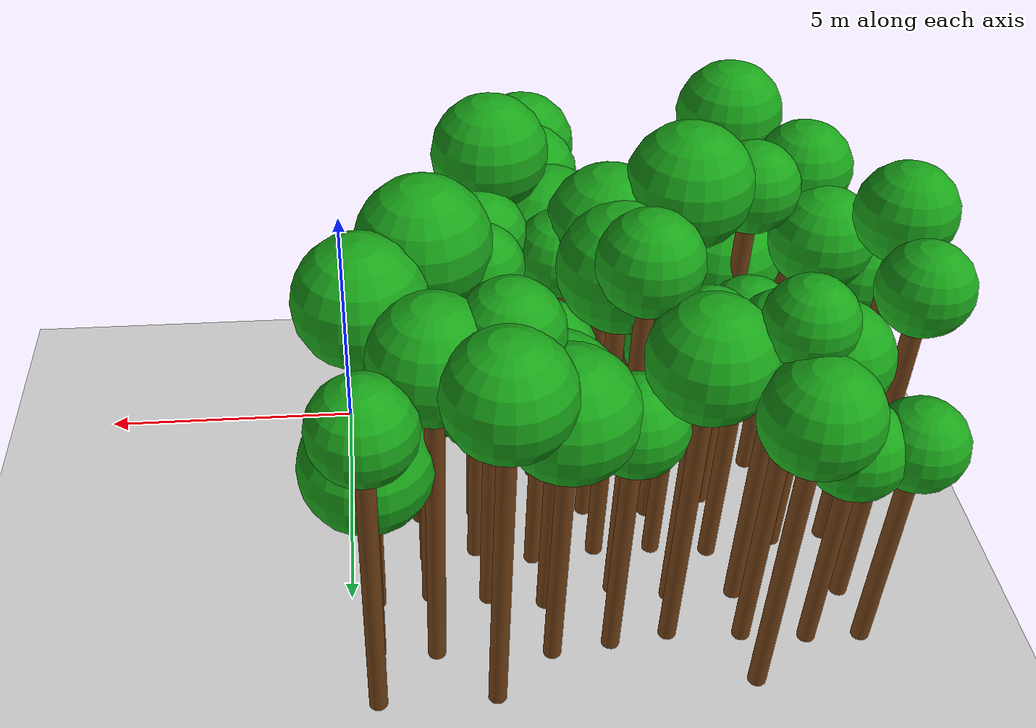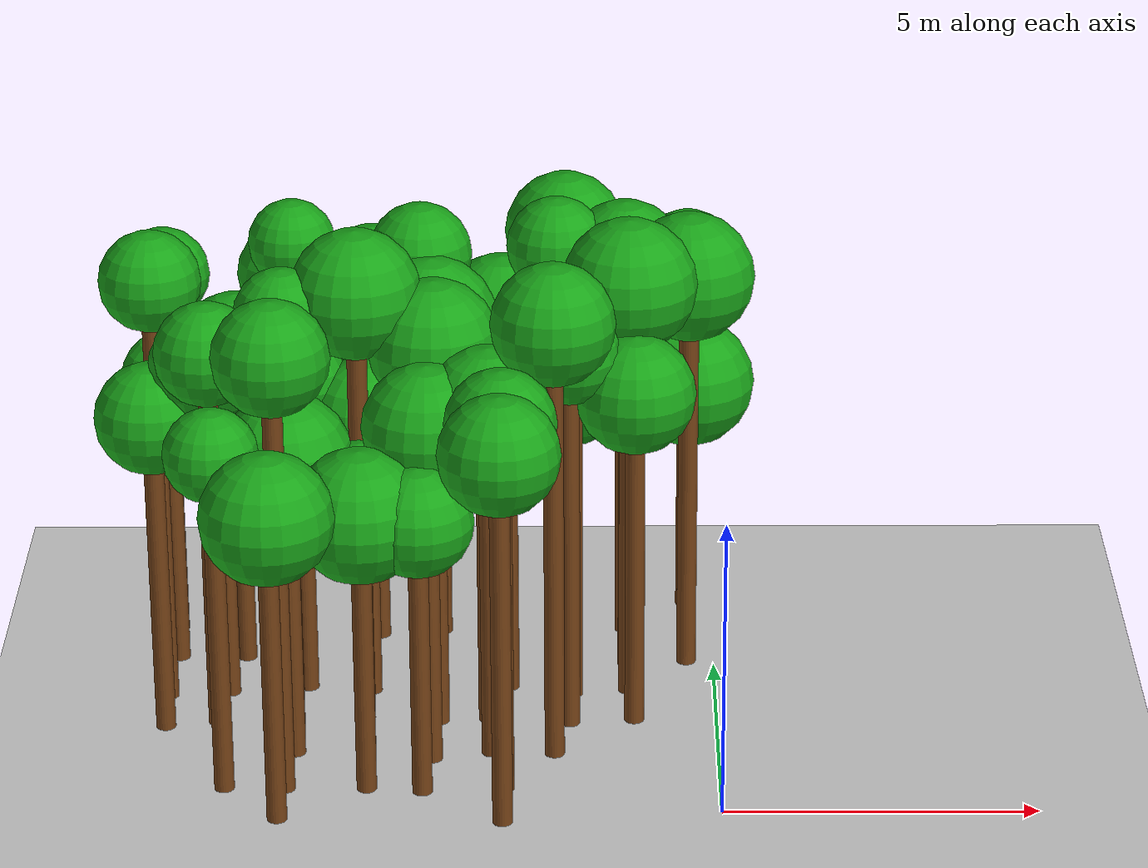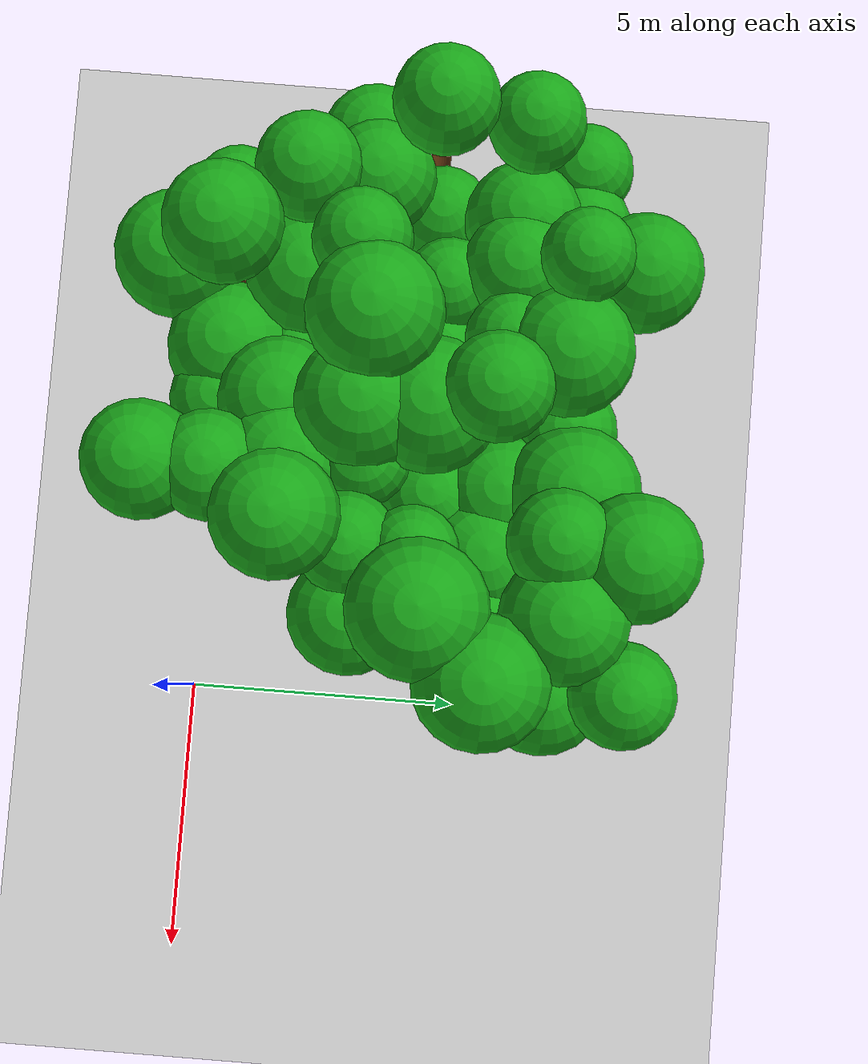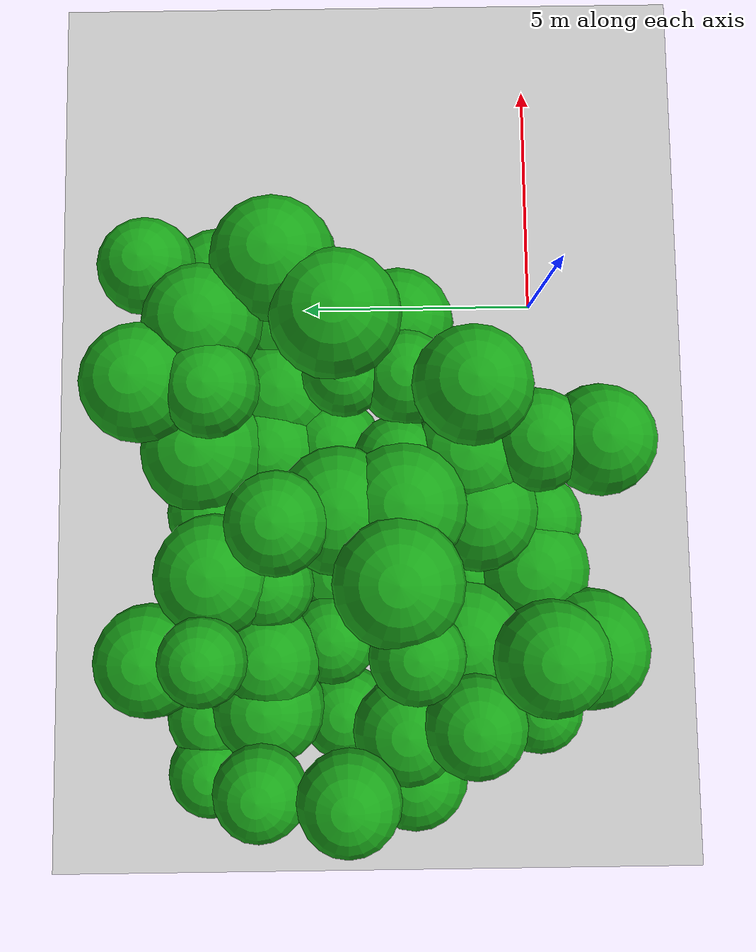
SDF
<sdf version="1.6">
 <world name="forest_world">
  <include><uri>model://sun</uri></include>
  <include><uri>model://ground_plane</uri></include>
  <model name="tree_1075_trunk">
   <static>true</static>
   <pose>-9.03 2.90 2.49 0 0 0</pose>
   <link name="link">
    <collision name="collision">
     <geometry><cylinder><radius>0.16</radius><length>4.99</length></cylinder></geometry>
    </collision>
    <visual name="visual">
     <geometry><cylinder><radius>0.16</radius><length>4.99</length></cylinder></geometry>
     <material><ambient>0.35 0.20 0.05 1</ambient><diffuse>0.45 0.25 0.08 1</diffuse></material>
    </visual>
   </link>
  </model>
  <model name="tree_1075_leaf">
   <static>true</static>
   <pose>-9.03 2.90 5.53 0 0 0</pose>
   <link name="link">
    <collision name="collision"><geometry><sphere><radius>0.91</radius></sphere></geometry></collision>
    <visual name="visual">
     <geometry><sphere><radius>0.91</radius></sphere></geometry>
     <material><ambient>0.05 0.45 0.05 1</ambient><diffuse>0.10 0.65 0.10 1</diffuse></material>
    </visual>
   </link>
  </model>
  <model name="tree_1076_trunk">
   <static>true</static>
   <pose>-9.07 3.97 3.47 0 0 0</pose>
   <link name="link">
    <collision name="collision">
     <geometry><cylinder><radius>0.16</radius><length>6.94</length></cylinder></geometry>
    </collision>
    <visual name="visual">
     <geometry><cylinder><radius>0.16</radius><length>6.94</length></cylinder></geometry>
     <material><ambient>0.35 0.20 0.05 1</ambient><diffuse>0.45 0.25 0.08 1</diffuse></material>
    </visual>
   </link>
  </model>
  <model name="tree_1076_leaf">
   <static>true</static>
   <pose>-9.07 3.97 7.43 0 0 0</pose>
   <link name="link">
    <collision name="collision"><geometry><sphere><radius>0.82</radius></sphere></geometry></collision>
    <visual name="visual">
     <geometry><sphere><radius>0.82</radius></sphere></geometry>
     <material><ambient>0.05 0.45 0.05 1</ambient><diffuse>0.10 0.65 0.10 1</diffuse></material>
    </visual>
   </link>
  </model>
  <model name="tree_1077_trunk">
   <static>true</static>
   <pose>-9.00 5.37 3.26 0 0 0</pose>
   <link name="link">
    <collision name="collision">
     <geometry><cylinder><radius>0.16</radius><length>6.53</length></cylinder></geometry>
    </collision>
    <visual name="visual">
     <geometry><cylinder><radius>0.16</radius><length>6.53</length></cylinder></geometry>
     <material><ambient>0.35 0.20 0.05 1</ambient><diffuse>0.45 0.25 0.08 1</diffuse></material>
    </visual>
   </link>
  </model>
  <model name="tree_1077_leaf">
   <static>true</static>
   <pose>-9.00 5.37 6.99 0 0 0</pose>
   <link name="link">
    <collision name="collision"><geometry><sphere><radius>0.76</radius></sphere></geometry></collision>
    <visual name="visual">
     <geometry><sphere><radius>0.76</radius></sphere></geometry>
     <material><ambient>0.05 0.45 0.05 1</ambient><diffuse>0.10 0.65 0.10 1</diffuse></material>
    </visual>
   </link>
  </model>
  <model name="tree_1078_trunk">
   <static>true</static>
   <pose>-9.10 6.41 2.12 0 0 0</pose>
   <link name="link">
    <collision name="collision">
     <geometry><cylinder><radius>0.16</radius><length>4.24</length></cylinder></geometry>
    </collision>
    <visual name="visual">
     <geometry><cylinder><radius>0.16</radius><length>4.24</length></cylinder></geometry>
     <material><ambient>0.35 0.20 0.05 1</ambient><diffuse>0.45 0.25 0.08 1</diffuse></material>
    </visual>
   </link>
  </model>
  <model name="tree_1078_leaf">
   <static>true</static>
   <pose>-9.10 6.41 4.71 0 0 0</pose>
   <link name="link">
    <collision name="collision"><geometry><sphere><radius>0.78</radius></sphere></geometry></collision>
    <visual name="visual">
     <geometry><sphere><radius>0.78</radius></sphere></geometry>
     <material><ambient>0.05 0.45 0.05 1</ambient><diffuse>0.10 0.65 0.10 1</diffuse></material>
    </visual>
   </link>
  </model>
  <model name="tree_1128_trunk">
   <static>true</static>
   <pose>-7.92 0.82 2.69 0 0 0</pose>
   <link name="link">
    <collision name="collision">
     <geometry><cylinder><radius>0.16</radius><length>5.38</length></cylinder></geometry>
    </collision>
    <visual name="visual">
     <geometry><cylinder><radius>0.16</radius><length>5.38</length></cylinder></geometry>
     <material><ambient>0.35 0.20 0.05 1</ambient><diffuse>0.45 0.25 0.08 1</diffuse></material>
    </visual>
   </link>
  </model>
  <model name="tree_1128_leaf">
   <static>true</static>
   <pose>-7.92 0.82 5.83 0 0 0</pose>
   <link name="link">
    <collision name="collision"><geometry><sphere><radius>0.75</radius></sphere></geometry></collision>
    <visual name="visual">
     <geometry><sphere><radius>0.75</radius></sphere></geometry>
     <material><ambient>0.05 0.45 0.05 1</ambient><diffuse>0.10 0.65 0.10 1</diffuse></material>
    </visual>
   </link>
  </model>
  <model name="tree_1129_trunk">
   <static>true</static>
   <pose>-8.03 1.97 3.27 0 0 0</pose>
   <link name="link">
    <collision name="collision">
     <geometry><cylinder><radius>0.16</radius><length>6.53</length></cylinder></geometry>
    </collision>
    <visual name="visual">
     <geometry><cylinder><radius>0.16</radius><length>6.53</length></cylinder></geometry>
     <material><ambient>0.35 0.20 0.05 1</ambient><diffuse>0.45 0.25 0.08 1</diffuse></material>
    </visual>
   </link>
  </model>
  <model name="tree_1129_leaf">
   <static>true</static>
   <pose>-8.03 1.97 7.03 0 0 0</pose>
   <link name="link">
    <collision name="collision"><geometry><sphere><radius>0.83</radius></sphere></geometry></collision>
    <visual name="visual">
     <geometry><sphere><radius>0.83</radius></sphere></geometry>
     <material><ambient>0.05 0.45 0.05 1</ambient><diffuse>0.10 0.65 0.10 1</diffuse></material>
    </visual>
   </link>
  </model>
  <model name="tree_1130_trunk">
   <static>true</static>
   <pose>-8.18 3.03 2.90 0 0 0</pose>
   <link name="link">
    <collision name="collision">
     <geometry><cylinder><radius>0.16</radius><length>5.79</length></cylinder></geometry>
    </collision>
    <visual name="visual">
     <geometry><cylinder><radius>0.16</radius><length>5.79</length></cylinder></geometry>
     <material><ambient>0.35 0.20 0.05 1</ambient><diffuse>0.45 0.25 0.08 1</diffuse></material>
    </visual>
   </link>
  </model>
  <model name="tree_1130_leaf">
   <static>true</static>
   <pose>-8.18 3.03 6.33 0 0 0</pose>
   <link name="link">
    <collision name="collision"><geometry><sphere><radius>0.89</radius></sphere></geometry></collision>
    <visual name="visual">
     <geometry><sphere><radius>0.89</radius></sphere></geometry>
     <material><ambient>0.05 0.45 0.05 1</ambient><diffuse>0.10 0.65 0.10 1</diffuse></material>
    </visual>
   </link>
  </model>
  <model name="tree_1131_trunk">
   <static>true</static>
   <pose>-8.05 4.07 2.28 0 0 0</pose>
   <link name="link">
    <collision name="collision">
     <geometry><cylinder><radius>0.16</radius><length>4.55</length></cylinder></geometry>
    </collision>
    <visual name="visual">
     <geometry><cylinder><radius>0.16</radius><length>4.55</length></cylinder></geometry>
     <material><ambient>0.35 0.20 0.05 1</ambient><diffuse>0.45 0.25 0.08 1</diffuse></material>
    </visual>
   </link>
  </model>
  <model name="tree_1131_leaf">
   <static>true</static>
   <pose>-8.05 4.07 5.04 0 0 0</pose>
   <link name="link">
    <collision name="collision"><geometry><sphere><radius>0.81</radius></sphere></geometry></collision>
    <visual name="visual">
     <geometry><sphere><radius>0.81</radius></sphere></geometry>
     <material><ambient>0.05 0.45 0.05 1</ambient><diffuse>0.10 0.65 0.10 1</diffuse></material>
    </visual>
   </link>
  </model>
  <model name="tree_1132_trunk">
   <static>true</static>
   <pose>-7.87 5.35 2.55 0 0 0</pose>
   <link name="link">
    <collision name="collision">
     <geometry><cylinder><radius>0.16</radius><length>5.10</length></cylinder></geometry>
    </collision>
    <visual name="visual">
     <geometry><cylinder><radius>0.16</radius><length>5.10</length></cylinder></geometry>
     <material><ambient>0.35 0.20 0.05 1</ambient><diffuse>0.45 0.25 0.08 1</diffuse></material>
    </visual>
   </link>
  </model>
  <model name="tree_1132_leaf">
   <static>true</static>
   <pose>-7.87 5.35 5.67 0 0 0</pose>
   <link name="link">
    <collision name="collision"><geometry><sphere><radius>0.95</radius></sphere></geometry></collision>
    <visual name="visual">
     <geometry><sphere><radius>0.95</radius></sphere></geometry>
     <material><ambient>0.05 0.45 0.05 1</ambient><diffuse>0.10 0.65 0.10 1</diffuse></material>
    </visual>
   </link>
  </model>
  <model name="tree_1133_trunk">
   <static>true</static>
   <pose>-8.12 6.39 2.07 0 0 0</pose>
   <link name="link">
    <collision name="collision">
     <geometry><cylinder><radius>0.16</radius><length>4.14</length></cylinder></geometry>
    </collision>
    <visual name="visual">
     <geometry><cylinder><radius>0.16</radius><length>4.14</length></cylinder></geometry>
     <material><ambient>0.35 0.20 0.05 1</ambient><diffuse>0.45 0.25 0.08 1</diffuse></material>
    </visual>
   </link>
  </model>
  <model name="tree_1133_leaf">
   <static>true</static>
   <pose>-8.12 6.39 4.65 0 0 0</pose>
   <link name="link">
    <collision name="collision"><geometry><sphere><radius>0.84</radius></sphere></geometry></collision>
    <visual name="visual">
     <geometry><sphere><radius>0.84</radius></sphere></geometry>
     <material><ambient>0.05 0.45 0.05 1</ambient><diffuse>0.10 0.65 0.10 1</diffuse></material>
    </visual>
   </link>
  </model>
  <model name="tree_1182_trunk">
   <static>true</static>
   <pose>-7.02 -0.18 2.30 0 0 0</pose>
   <link name="link">
    <collision name="collision">
     <geometry><cylinder><radius>0.16</radius><length>4.60</length></cylinder></geometry>
    </collision>
    <visual name="visual">
     <geometry><cylinder><radius>0.16</radius><length>4.60</length></cylinder></geometry>
     <material><ambient>0.35 0.20 0.05 1</ambient><diffuse>0.45 0.25 0.08 1</diffuse></material>
    </visual>
   </link>
  </model>
  <model name="tree_1182_leaf">
   <static>true</static>
   <pose>-7.02 -0.18 5.23 0 0 0</pose>
   <link name="link">
    <collision name="collision"><geometry><sphere><radius>1.05</radius></sphere></geometry></collision>
    <visual name="visual">
     <geometry><sphere><radius>1.05</radius></sphere></geometry>
     <material><ambient>0.05 0.45 0.05 1</ambient><diffuse>0.10 0.65 0.10 1</diffuse></material>
    </visual>
   </link>
  </model>
  <model name="tree_1183_trunk">
   <static>true</static>
   <pose>-6.95 0.80 3.45 0 0 0</pose>
   <link name="link">
    <collision name="collision">
     <geometry><cylinder><radius>0.16</radius><length>6.91</length></cylinder></geometry>
    </collision>
    <visual name="visual">
     <geometry><cylinder><radius>0.16</radius><length>6.91</length></cylinder></geometry>
     <material><ambient>0.35 0.20 0.05 1</ambient><diffuse>0.45 0.25 0.08 1</diffuse></material>
    </visual>
   </link>
  </model>
  <model name="tree_1183_leaf">
   <static>true</static>
   <pose>-6.95 0.80 7.46 0 0 0</pose>
   <link name="link">
    <collision name="collision"><geometry><sphere><radius>0.92</radius></sphere></geometry></collision>
    <visual name="visual">
     <geometry><sphere><radius>0.92</radius></sphere></geometry>
     <material><ambient>0.05 0.45 0.05 1</ambient><diffuse>0.10 0.65 0.10 1</diffuse></material>
    </visual>
   </link>
  </model>
  <model name="tree_1184_trunk">
   <static>true</static>
   <pose>-6.85 1.99 2.30 0 0 0</pose>
   <link name="link">
    <collision name="collision">
     <geometry><cylinder><radius>0.16</radius><length>4.61</length></cylinder></geometry>
    </collision>
    <visual name="visual">
     <geometry><cylinder><radius>0.16</radius><length>4.61</length></cylinder></geometry>
     <material><ambient>0.35 0.20 0.05 1</ambient><diffuse>0.45 0.25 0.08 1</diffuse></material>
    </visual>
   </link>
  </model>
  <model name="tree_1184_leaf">
   <static>true</static>
   <pose>-6.85 1.99 5.24 0 0 0</pose>
   <link name="link">
    <collision name="collision"><geometry><sphere><radius>1.06</radius></sphere></geometry></collision>
    <visual name="visual">
     <geometry><sphere><radius>1.06</radius></sphere></geometry>
     <material><ambient>0.05 0.45 0.05 1</ambient><diffuse>0.10 0.65 0.10 1</diffuse></material>
    </visual>
   </link>
  </model>
  <model name="tree_1185_trunk">
   <static>true</static>
   <pose>-6.91 2.88 3.42 0 0 0</pose>
   <link name="link">
    <collision name="collision">
     <geometry><cylinder><radius>0.16</radius><length>6.83</length></cylinder></geometry>
    </collision>
    <visual name="visual">
     <geometry><cylinder><radius>0.16</radius><length>6.83</length></cylinder></geometry>
     <material><ambient>0.35 0.20 0.05 1</ambient><diffuse>0.45 0.25 0.08 1</diffuse></material>
    </visual>
   </link>
  </model>
  <model name="tree_1185_leaf">
   <static>true</static>
   <pose>-6.91 2.88 7.29 0 0 0</pose>
   <link name="link">
    <collision name="collision"><geometry><sphere><radius>0.77</radius></sphere></geometry></collision>
    <visual name="visual">
     <geometry><sphere><radius>0.77</radius></sphere></geometry>
     <material><ambient>0.05 0.45 0.05 1</ambient><diffuse>0.10 0.65 0.10 1</diffuse></material>
    </visual>
   </link>
  </model>
  <model name="tree_1186_trunk">
   <static>true</static>
   <pose>-6.76 4.26 2.57 0 0 0</pose>
   <link name="link">
    <collision name="collision">
     <geometry><cylinder><radius>0.16</radius><length>5.14</length></cylinder></geometry>
    </collision>
    <visual name="visual">
     <geometry><cylinder><radius>0.16</radius><length>5.14</length></cylinder></geometry>
     <material><ambient>0.35 0.20 0.05 1</ambient><diffuse>0.45 0.25 0.08 1</diffuse></material>
    </visual>
   </link>
  </model>
  <model name="tree_1186_leaf">
   <static>true</static>
   <pose>-6.76 4.26 5.60 0 0 0</pose>
   <link name="link">
    <collision name="collision"><geometry><sphere><radius>0.76</radius></sphere></geometry></collision>
    <visual name="visual">
     <geometry><sphere><radius>0.76</radius></sphere></geometry>
     <material><ambient>0.05 0.45 0.05 1</ambient><diffuse>0.10 0.65 0.10 1</diffuse></material>
    </visual>
   </link>
  </model>
  <model name="tree_1187_trunk">
   <static>true</static>
   <pose>-7.03 5.31 2.71 0 0 0</pose>
   <link name="link">
    <collision name="collision">
     <geometry><cylinder><radius>0.16</radius><length>5.43</length></cylinder></geometry>
    </collision>
    <visual name="visual">
     <geometry><cylinder><radius>0.16</radius><length>5.43</length></cylinder></geometry>
     <material><ambient>0.35 0.20 0.05 1</ambient><diffuse>0.45 0.25 0.08 1</diffuse></material>
    </visual>
   </link>
  </model>
  <model name="tree_1187_leaf">
   <static>true</static>
   <pose>-7.03 5.31 5.96 0 0 0</pose>
   <link name="link">
    <collision name="collision"><geometry><sphere><radius>0.89</radius></sphere></geometry></collision>
    <visual name="visual">
     <geometry><sphere><radius>0.89</radius></sphere></geometry>
     <material><ambient>0.05 0.45 0.05 1</ambient><diffuse>0.10 0.65 0.10 1</diffuse></material>
    </visual>
   </link>
  </model>
  <model name="tree_1188_trunk">
   <static>true</static>
   <pose>-6.96 6.27 3.37 0 0 0</pose>
   <link name="link">
    <collision name="collision">
     <geometry><cylinder><radius>0.16</radius><length>6.74</length></cylinder></geometry>
    </collision>
    <visual name="visual">
     <geometry><cylinder><radius>0.16</radius><length>6.74</length></cylinder></geometry>
     <material><ambient>0.35 0.20 0.05 1</ambient><diffuse>0.45 0.25 0.08 1</diffuse></material>
    </visual>
   </link>
  </model>
  <model name="tree_1188_leaf">
   <static>true</static>
   <pose>-6.96 6.27 7.17 0 0 0</pose>
   <link name="link">
    <collision name="collision"><geometry><sphere><radius>0.72</radius></sphere></geometry></collision>
    <visual name="visual">
     <geometry><sphere><radius>0.72</radius></sphere></geometry>
     <material><ambient>0.05 0.45 0.05 1</ambient><diffuse>0.10 0.65 0.10 1</diffuse></material>
    </visual>
   </link>
  </model>
  <model name="tree_1189_trunk">
   <static>true</static>
   <pose>-7.02 7.26 2.82 0 0 0</pose>
   <link name="link">
    <collision name="collision">
     <geometry><cylinder><radius>0.16</radius><length>5.65</length></cylinder></geometry>
    </collision>
    <visual name="visual">
     <geometry><cylinder><radius>0.16</radius><length>5.65</length></cylinder></geometry>
     <material><ambient>0.35 0.20 0.05 1</ambient><diffuse>0.45 0.25 0.08 1</diffuse></material>
    </visual>
   </link>
  </model>
  <model name="tree_1189_leaf">
   <static>true</static>
   <pose>-7.02 7.26 6.21 0 0 0</pose>
   <link name="link">
    <collision name="collision"><geometry><sphere><radius>0.94</radius></sphere></geometry></collision>
    <visual name="visual">
     <geometry><sphere><radius>0.94</radius></sphere></geometry>
     <material><ambient>0.05 0.45 0.05 1</ambient><diffuse>0.10 0.65 0.10 1</diffuse></material>
    </visual>
   </link>
  </model>
  <model name="tree_1238_trunk">
   <static>true</static>
   <pose>-5.65 0.78 2.09 0 0 0</pose>
   <link name="link">
    <collision name="collision">
     <geometry><cylinder><radius>0.16</radius><length>4.17</length></cylinder></geometry>
    </collision>
    <visual name="visual">
     <geometry><cylinder><radius>0.16</radius><length>4.17</length></cylinder></geometry>
     <material><ambient>0.35 0.20 0.05 1</ambient><diffuse>0.45 0.25 0.08 1</diffuse></material>
    </visual>
   </link>
  </model>
  <model name="tree_1238_leaf">
   <static>true</static>
   <pose>-5.65 0.78 4.82 0 0 0</pose>
   <link name="link">
    <collision name="collision"><geometry><sphere><radius>1.08</radius></sphere></geometry></collision>
    <visual name="visual">
     <geometry><sphere><radius>1.08</radius></sphere></geometry>
     <material><ambient>0.05 0.45 0.05 1</ambient><diffuse>0.10 0.65 0.10 1</diffuse></material>
    </visual>
   </link>
  </model>
  <model name="tree_1239_trunk">
   <static>true</static>
   <pose>-5.71 1.92 2.10 0 0 0</pose>
   <link name="link">
    <collision name="collision">
     <geometry><cylinder><radius>0.16</radius><length>4.20</length></cylinder></geometry>
    </collision>
    <visual name="visual">
     <geometry><cylinder><radius>0.16</radius><length>4.20</length></cylinder></geometry>
     <material><ambient>0.35 0.20 0.05 1</ambient><diffuse>0.45 0.25 0.08 1</diffuse></material>
    </visual>
   </link>
  </model>
  <model name="tree_1239_leaf">
   <static>true</static>
   <pose>-5.71 1.92 4.69 0 0 0</pose>
   <link name="link">
    <collision name="collision"><geometry><sphere><radius>0.82</radius></sphere></geometry></collision>
    <visual name="visual">
     <geometry><sphere><radius>0.82</radius></sphere></geometry>
     <material><ambient>0.05 0.45 0.05 1</ambient><diffuse>0.10 0.65 0.10 1</diffuse></material>
    </visual>
   </link>
  </model>
  <model name="tree_1240_trunk">
   <static>true</static>
   <pose>-5.77 3.16 3.45 0 0 0</pose>
   <link name="link">
    <collision name="collision">
     <geometry><cylinder><radius>0.16</radius><length>6.91</length></cylinder></geometry>
    </collision>
    <visual name="visual">
     <geometry><cylinder><radius>0.16</radius><length>6.91</length></cylinder></geometry>
     <material><ambient>0.35 0.20 0.05 1</ambient><diffuse>0.45 0.25 0.08 1</diffuse></material>
    </visual>
   </link>
  </model>
  <model name="tree_1240_leaf">
   <static>true</static>
   <pose>-5.77 3.16 7.54 0 0 0</pose>
   <link name="link">
    <collision name="collision"><geometry><sphere><radius>1.05</radius></sphere></geometry></collision>
    <visual name="visual">
     <geometry><sphere><radius>1.05</radius></sphere></geometry>
     <material><ambient>0.05 0.45 0.05 1</ambient><diffuse>0.10 0.65 0.10 1</diffuse></material>
    </visual>
   </link>
  </model>
  <model name="tree_1241_trunk">
   <static>true</static>
   <pose>-5.70 4.12 2.25 0 0 0</pose>
   <link name="link">
    <collision name="collision">
     <geometry><cylinder><radius>0.16</radius><length>4.49</length></cylinder></geometry>
    </collision>
    <visual name="visual">
     <geometry><cylinder><radius>0.16</radius><length>4.49</length></cylinder></geometry>
     <material><ambient>0.35 0.20 0.05 1</ambient><diffuse>0.45 0.25 0.08 1</diffuse></material>
    </visual>
   </link>
  </model>
  <model name="tree_1241_leaf">
   <static>true</static>
   <pose>-5.70 4.12 5.06 0 0 0</pose>
   <link name="link">
    <collision name="collision"><geometry><sphere><radius>0.94</radius></sphere></geometry></collision>
    <visual name="visual">
     <geometry><sphere><radius>0.94</radius></sphere></geometry>
     <material><ambient>0.05 0.45 0.05 1</ambient><diffuse>0.10 0.65 0.10 1</diffuse></material>
    </visual>
   </link>
  </model>
  <model name="tree_1242_trunk">
   <static>true</static>
   <pose>-5.82 5.29 2.89 0 0 0</pose>
   <link name="link">
    <collision name="collision">
     <geometry><cylinder><radius>0.16</radius><length>5.78</length></cylinder></geometry>
    </collision>
    <visual name="visual">
     <geometry><cylinder><radius>0.16</radius><length>5.78</length></cylinder></geometry>
     <material><ambient>0.35 0.20 0.05 1</ambient><diffuse>0.45 0.25 0.08 1</diffuse></material>
    </visual>
   </link>
  </model>
  <model name="tree_1242_leaf">
   <static>true</static>
   <pose>-5.82 5.29 6.23 0 0 0</pose>
   <link name="link">
    <collision name="collision"><geometry><sphere><radius>0.75</radius></sphere></geometry></collision>
    <visual name="visual">
     <geometry><sphere><radius>0.75</radius></sphere></geometry>
     <material><ambient>0.05 0.45 0.05 1</ambient><diffuse>0.10 0.65 0.10 1</diffuse></material>
    </visual>
   </link>
  </model>
  <model name="tree_1243_trunk">
   <static>true</static>
   <pose>-5.64 6.17 2.92 0 0 0</pose>
   <link name="link">
    <collision name="collision">
     <geometry><cylinder><radius>0.16</radius><length>5.84</length></cylinder></geometry>
    </collision>
    <visual name="visual">
     <geometry><cylinder><radius>0.16</radius><length>5.84</length></cylinder></geometry>
     <material><ambient>0.35 0.20 0.05 1</ambient><diffuse>0.45 0.25 0.08 1</diffuse></material>
    </visual>
   </link>
  </model>
  <model name="tree_1243_leaf">
   <static>true</static>
   <pose>-5.64 6.17 6.45 0 0 0</pose>
   <link name="link">
    <collision name="collision"><geometry><sphere><radius>1.02</radius></sphere></geometry></collision>
    <visual name="visual">
     <geometry><sphere><radius>1.02</radius></sphere></geometry>
     <material><ambient>0.05 0.45 0.05 1</ambient><diffuse>0.10 0.65 0.10 1</diffuse></material>
    </visual>
   </link>
  </model>
  <model name="tree_1293_trunk">
   <static>true</static>
   <pose>-4.76 0.69 2.11 0 0 0</pose>
   <link name="link">
    <collision name="collision">
     <geometry><cylinder><radius>0.16</radius><length>4.22</length></cylinder></geometry>
    </collision>
    <visual name="visual">
     <geometry><cylinder><radius>0.16</radius><length>4.22</length></cylinder></geometry>
     <material><ambient>0.35 0.20 0.05 1</ambient><diffuse>0.45 0.25 0.08 1</diffuse></material>
    </visual>
   </link>
  </model>
  <model name="tree_1293_leaf">
   <static>true</static>
   <pose>-4.76 0.69 4.76 0 0 0</pose>
   <link name="link">
    <collision name="collision"><geometry><sphere><radius>0.89</radius></sphere></geometry></collision>
    <visual name="visual">
     <geometry><sphere><radius>0.89</radius></sphere></geometry>
     <material><ambient>0.05 0.45 0.05 1</ambient><diffuse>0.10 0.65 0.10 1</diffuse></material>
    </visual>
   </link>
  </model>
  <model name="tree_1294_trunk">
   <static>true</static>
   <pose>-4.63 1.76 2.63 0 0 0</pose>
   <link name="link">
    <collision name="collision">
     <geometry><cylinder><radius>0.16</radius><length>5.25</length></cylinder></geometry>
    </collision>
    <visual name="visual">
     <geometry><cylinder><radius>0.16</radius><length>5.25</length></cylinder></geometry>
     <material><ambient>0.35 0.20 0.05 1</ambient><diffuse>0.45 0.25 0.08 1</diffuse></material>
    </visual>
   </link>
  </model>
  <model name="tree_1294_leaf">
   <static>true</static>
   <pose>-4.63 1.76 5.87 0 0 0</pose>
   <link name="link">
    <collision name="collision"><geometry><sphere><radius>1.03</radius></sphere></geometry></collision>
    <visual name="visual">
     <geometry><sphere><radius>1.03</radius></sphere></geometry>
     <material><ambient>0.05 0.45 0.05 1</ambient><diffuse>0.10 0.65 0.10 1</diffuse></material>
    </visual>
   </link>
  </model>
  <model name="tree_1295_trunk">
   <static>true</static>
   <pose>-4.55 3.05 3.05 0 0 0</pose>
   <link name="link">
    <collision name="collision">
     <geometry><cylinder><radius>0.16</radius><length>6.09</length></cylinder></geometry>
    </collision>
    <visual name="visual">
     <geometry><cylinder><radius>0.16</radius><length>6.09</length></cylinder></geometry>
     <material><ambient>0.35 0.20 0.05 1</ambient><diffuse>0.45 0.25 0.08 1</diffuse></material>
    </visual>
   </link>
  </model>
  <model name="tree_1295_leaf">
   <static>true</static>
   <pose>-4.55 3.05 6.73 0 0 0</pose>
   <link name="link">
    <collision name="collision"><geometry><sphere><radius>1.06</radius></sphere></geometry></collision>
    <visual name="visual">
     <geometry><sphere><radius>1.06</radius></sphere></geometry>
     <material><ambient>0.05 0.45 0.05 1</ambient><diffuse>0.10 0.65 0.10 1</diffuse></material>
    </visual>
   </link>
  </model>
  <model name="tree_1296_trunk">
   <static>true</static>
   <pose>-4.61 4.10 3.02 0 0 0</pose>
   <link name="link">
    <collision name="collision">
     <geometry><cylinder><radius>0.16</radius><length>6.03</length></cylinder></geometry>
    </collision>
    <visual name="visual">
     <geometry><cylinder><radius>0.16</radius><length>6.03</length></cylinder></geometry>
     <material><ambient>0.35 0.20 0.05 1</ambient><diffuse>0.45 0.25 0.08 1</diffuse></material>
    </visual>
   </link>
  </model>
  <model name="tree_1296_leaf">
   <static>true</static>
   <pose>-4.61 4.10 6.67 0 0 0</pose>
   <link name="link">
    <collision name="collision"><geometry><sphere><radius>1.07</radius></sphere></geometry></collision>
    <visual name="visual">
     <geometry><sphere><radius>1.07</radius></sphere></geometry>
     <material><ambient>0.05 0.45 0.05 1</ambient><diffuse>0.10 0.65 0.10 1</diffuse></material>
    </visual>
   </link>
  </model>
  <model name="tree_1297_trunk">
   <static>true</static>
   <pose>-4.81 5.07 3.47 0 0 0</pose>
   <link name="link">
    <collision name="collision">
     <geometry><cylinder><radius>0.16</radius><length>6.94</length></cylinder></geometry>
    </collision>
    <visual name="visual">
     <geometry><cylinder><radius>0.16</radius><length>6.94</length></cylinder></geometry>
     <material><ambient>0.35 0.20 0.05 1</ambient><diffuse>0.45 0.25 0.08 1</diffuse></material>
    </visual>
   </link>
  </model>
  <model name="tree_1297_leaf">
   <static>true</static>
   <pose>-4.81 5.07 7.45 0 0 0</pose>
   <link name="link">
    <collision name="collision"><geometry><sphere><radius>0.84</radius></sphere></geometry></collision>
    <visual name="visual">
     <geometry><sphere><radius>0.84</radius></sphere></geometry>
     <material><ambient>0.05 0.45 0.05 1</ambient><diffuse>0.10 0.65 0.10 1</diffuse></material>
    </visual>
   </link>
  </model>
  <model name="tree_1298_trunk">
   <static>true</static>
   <pose>-4.59 6.31 2.40 0 0 0</pose>
   <link name="link">
    <collision name="collision">
     <geometry><cylinder><radius>0.16</radius><length>4.80</length></cylinder></geometry>
    </collision>
    <visual name="visual">
     <geometry><cylinder><radius>0.16</radius><length>4.80</length></cylinder></geometry>
     <material><ambient>0.35 0.20 0.05 1</ambient><diffuse>0.45 0.25 0.08 1</diffuse></material>
    </visual>
   </link>
  </model>
  <model name="tree_1298_leaf">
   <static>true</static>
   <pose>-4.59 6.31 5.30 0 0 0</pose>
   <link name="link">
    <collision name="collision"><geometry><sphere><radius>0.84</radius></sphere></geometry></collision>
    <visual name="visual">
     <geometry><sphere><radius>0.84</radius></sphere></geometry>
     <material><ambient>0.05 0.45 0.05 1</ambient><diffuse>0.10 0.65 0.10 1</diffuse></material>
    </visual>
   </link>
  </model>
  <model name="tree_1347_trunk">
   <static>true</static>
   <pose>-3.47 -0.29 2.88 0 0 0</pose>
   <link name="link">
    <collision name="collision">
     <geometry><cylinder><radius>0.16</radius><length>5.76</length></cylinder></geometry>
    </collision>
    <visual name="visual">
     <geometry><cylinder><radius>0.16</radius><length>5.76</length></cylinder></geometry>
     <material><ambient>0.35 0.20 0.05 1</ambient><diffuse>0.45 0.25 0.08 1</diffuse></material>
    </visual>
   </link>
  </model>
  <model name="tree_1347_leaf">
   <static>true</static>
   <pose>-3.47 -0.29 6.33 0 0 0</pose>
   <link name="link">
    <collision name="collision"><geometry><sphere><radius>0.95</radius></sphere></geometry></collision>
    <visual name="visual">
     <geometry><sphere><radius>0.95</radius></sphere></geometry>
     <material><ambient>0.05 0.45 0.05 1</ambient><diffuse>0.10 0.65 0.10 1</diffuse></material>
    </visual>
   </link>
  </model>
  <model name="tree_1348_trunk">
   <static>true</static>
   <pose>-3.46 0.78 2.92 0 0 0</pose>
   <link name="link">
    <collision name="collision">
     <geometry><cylinder><radius>0.16</radius><length>5.84</length></cylinder></geometry>
    </collision>
    <visual name="visual">
     <geometry><cylinder><radius>0.16</radius><length>5.84</length></cylinder></geometry>
     <material><ambient>0.35 0.20 0.05 1</ambient><diffuse>0.45 0.25 0.08 1</diffuse></material>
    </visual>
   </link>
  </model>
  <model name="tree_1348_leaf">
   <static>true</static>
   <pose>-3.46 0.78 6.36 0 0 0</pose>
   <link name="link">
    <collision name="collision"><geometry><sphere><radius>0.88</radius></sphere></geometry></collision>
    <visual name="visual">
     <geometry><sphere><radius>0.88</radius></sphere></geometry>
     <material><ambient>0.05 0.45 0.05 1</ambient><diffuse>0.10 0.65 0.10 1</diffuse></material>
    </visual>
   </link>
  </model>
  <model name="tree_1349_trunk">
   <static>true</static>
   <pose>-3.68 1.96 2.72 0 0 0</pose>
   <link name="link">
    <collision name="collision">
     <geometry><cylinder><radius>0.16</radius><length>5.43</length></cylinder></geometry>
    </collision>
    <visual name="visual">
     <geometry><cylinder><radius>0.16</radius><length>5.43</length></cylinder></geometry>
     <material><ambient>0.35 0.20 0.05 1</ambient><diffuse>0.45 0.25 0.08 1</diffuse></material>
    </visual>
   </link>
  </model>
  <model name="tree_1349_leaf">
   <static>true</static>
   <pose>-3.68 1.96 6.06 0 0 0</pose>
   <link name="link">
    <collision name="collision"><geometry><sphere><radius>1.05</radius></sphere></geometry></collision>
    <visual name="visual">
     <geometry><sphere><radius>1.05</radius></sphere></geometry>
     <material><ambient>0.05 0.45 0.05 1</ambient><diffuse>0.10 0.65 0.10 1</diffuse></material>
    </visual>
   </link>
  </model>
  <model name="tree_1350_trunk">
   <static>true</static>
   <pose>-3.75 3.11 2.92 0 0 0</pose>
   <link name="link">
    <collision name="collision">
     <geometry><cylinder><radius>0.16</radius><length>5.83</length></cylinder></geometry>
    </collision>
    <visual name="visual">
     <geometry><cylinder><radius>0.16</radius><length>5.83</length></cylinder></geometry>
     <material><ambient>0.35 0.20 0.05 1</ambient><diffuse>0.45 0.25 0.08 1</diffuse></material>
    </visual>
   </link>
  </model>
  <model name="tree_1350_leaf">
   <static>true</static>
   <pose>-3.75 3.11 6.28 0 0 0</pose>
   <link name="link">
    <collision name="collision"><geometry><sphere><radius>0.75</radius></sphere></geometry></collision>
    <visual name="visual">
     <geometry><sphere><radius>0.75</radius></sphere></geometry>
     <material><ambient>0.05 0.45 0.05 1</ambient><diffuse>0.10 0.65 0.10 1</diffuse></material>
    </visual>
   </link>
  </model>
  <model name="tree_1351_trunk">
   <static>true</static>
   <pose>-3.42 4.24 2.31 0 0 0</pose>
   <link name="link">
    <collision name="collision">
     <geometry><cylinder><radius>0.16</radius><length>4.61</length></cylinder></geometry>
    </collision>
    <visual name="visual">
     <geometry><cylinder><radius>0.16</radius><length>4.61</length></cylinder></geometry>
     <material><ambient>0.35 0.20 0.05 1</ambient><diffuse>0.45 0.25 0.08 1</diffuse></material>
    </visual>
   </link>
  </model>
  <model name="tree_1351_leaf">
   <static>true</static>
   <pose>-3.42 4.24 5.13 0 0 0</pose>
   <link name="link">
    <collision name="collision"><geometry><sphere><radius>0.87</radius></sphere></geometry></collision>
    <visual name="visual">
     <geometry><sphere><radius>0.87</radius></sphere></geometry>
     <material><ambient>0.05 0.45 0.05 1</ambient><diffuse>0.10 0.65 0.10 1</diffuse></material>
    </visual>
   </link>
  </model>
  <model name="tree_1352_trunk">
   <static>true</static>
   <pose>-3.53 5.33 2.31 0 0 0</pose>
   <link name="link">
    <collision name="collision">
     <geometry><cylinder><radius>0.16</radius><length>4.62</length></cylinder></geometry>
    </collision>
    <visual name="visual">
     <geometry><cylinder><radius>0.16</radius><length>4.62</length></cylinder></geometry>
     <material><ambient>0.35 0.20 0.05 1</ambient><diffuse>0.45 0.25 0.08 1</diffuse></material>
    </visual>
   </link>
  </model>
  <model name="tree_1352_leaf">
   <static>true</static>
   <pose>-3.53 5.33 5.21 0 0 0</pose>
   <link name="link">
    <collision name="collision"><geometry><sphere><radius>0.99</radius></sphere></geometry></collision>
    <visual name="visual">
     <geometry><sphere><radius>0.99</radius></sphere></geometry>
     <material><ambient>0.05 0.45 0.05 1</ambient><diffuse>0.10 0.65 0.10 1</diffuse></material>
    </visual>
   </link>
  </model>
  <model name="tree_1353_trunk">
   <static>true</static>
   <pose>-3.53 6.45 2.53 0 0 0</pose>
   <link name="link">
    <collision name="collision">
     <geometry><cylinder><radius>0.16</radius><length>5.07</length></cylinder></geometry>
    </collision>
    <visual name="visual">
     <geometry><cylinder><radius>0.16</radius><length>5.07</length></cylinder></geometry>
     <material><ambient>0.35 0.20 0.05 1</ambient><diffuse>0.45 0.25 0.08 1</diffuse></material>
    </visual>
   </link>
  </model>
  <model name="tree_1353_leaf">
   <static>true</static>
   <pose>-3.53 6.45 5.73 0 0 0</pose>
   <link name="link">
    <collision name="collision"><geometry><sphere><radius>1.10</radius></sphere></geometry></collision>
    <visual name="visual">
     <geometry><sphere><radius>1.10</radius></sphere></geometry>
     <material><ambient>0.05 0.45 0.05 1</ambient><diffuse>0.10 0.65 0.10 1</diffuse></material>
    </visual>
   </link>
  </model>
  <model name="tree_1401_trunk">
   <static>true</static>
   <pose>-2.66 1.93 3.47 0 0 0</pose>
   <link name="link">
    <collision name="collision">
     <geometry><cylinder><radius>0.16</radius><length>6.94</length></cylinder></geometry>
    </collision>
    <visual name="visual">
     <geometry><cylinder><radius>0.16</radius><length>6.94</length></cylinder></geometry>
     <material><ambient>0.35 0.20 0.05 1</ambient><diffuse>0.45 0.25 0.08 1</diffuse></material>
    </visual>
   </link>
  </model>
  <model name="tree_1401_leaf">
   <static>true</static>
   <pose>-2.66 1.93 7.53 0 0 0</pose>
   <link name="link">
    <collision name="collision"><geometry><sphere><radius>0.98</radius></sphere></geometry></collision>
    <visual name="visual">
     <geometry><sphere><radius>0.98</radius></sphere></geometry>
     <material><ambient>0.05 0.45 0.05 1</ambient><diffuse>0.10 0.65 0.10 1</diffuse></material>
    </visual>
   </link>
  </model>
  <model name="tree_1402_trunk">
   <static>true</static>
   <pose>-2.41 2.98 3.05 0 0 0</pose>
   <link name="link">
    <collision name="collision">
     <geometry><cylinder><radius>0.16</radius><length>6.10</length></cylinder></geometry>
    </collision>
    <visual name="visual">
     <geometry><cylinder><radius>0.16</radius><length>6.10</length></cylinder></geometry>
     <material><ambient>0.35 0.20 0.05 1</ambient><diffuse>0.45 0.25 0.08 1</diffuse></material>
    </visual>
   </link>
  </model>
  <model name="tree_1402_leaf">
   <static>true</static>
   <pose>-2.41 2.98 6.58 0 0 0</pose>
   <link name="link">
    <collision name="collision"><geometry><sphere><radius>0.81</radius></sphere></geometry></collision>
    <visual name="visual">
     <geometry><sphere><radius>0.81</radius></sphere></geometry>
     <material><ambient>0.05 0.45 0.05 1</ambient><diffuse>0.10 0.65 0.10 1</diffuse></material>
    </visual>
   </link>
  </model>
  <model name="tree_1403_trunk">
   <static>true</static>
   <pose>-2.36 3.99 3.14 0 0 0</pose>
   <link name="link">
    <collision name="collision">
     <geometry><cylinder><radius>0.16</radius><length>6.27</length></cylinder></geometry>
    </collision>
    <visual name="visual">
     <geometry><cylinder><radius>0.16</radius><length>6.27</length></cylinder></geometry>
     <material><ambient>0.35 0.20 0.05 1</ambient><diffuse>0.45 0.25 0.08 1</diffuse></material>
    </visual>
   </link>
  </model>
  <model name="tree_1403_leaf">
   <static>true</static>
   <pose>-2.36 3.99 6.70 0 0 0</pose>
   <link name="link">
    <collision name="collision"><geometry><sphere><radius>0.71</radius></sphere></geometry></collision>
    <visual name="visual">
     <geometry><sphere><radius>0.71</radius></sphere></geometry>
     <material><ambient>0.05 0.45 0.05 1</ambient><diffuse>0.10 0.65 0.10 1</diffuse></material>
    </visual>
   </link>
  </model>
  <model name="tree_1404_trunk">
   <static>true</static>
   <pose>-2.50 5.15 2.25 0 0 0</pose>
   <link name="link">
    <collision name="collision">
     <geometry><cylinder><radius>0.16</radius><length>4.50</length></cylinder></geometry>
    </collision>
    <visual name="visual">
     <geometry><cylinder><radius>0.16</radius><length>4.50</length></cylinder></geometry>
     <material><ambient>0.35 0.20 0.05 1</ambient><diffuse>0.45 0.25 0.08 1</diffuse></material>
    </visual>
   </link>
  </model>
  <model name="tree_1404_leaf">
   <static>true</static>
   <pose>-2.50 5.15 5.13 0 0 0</pose>
   <link name="link">
    <collision name="collision"><geometry><sphere><radius>1.06</radius></sphere></geometry></collision>
    <visual name="visual">
     <geometry><sphere><radius>1.06</radius></sphere></geometry>
     <material><ambient>0.05 0.45 0.05 1</ambient><diffuse>0.10 0.65 0.10 1</diffuse></material>
    </visual>
   </link>
  </model>
  <model name="tree_1405_trunk">
   <static>true</static>
   <pose>-2.62 6.17 3.32 0 0 0</pose>
   <link name="link">
    <collision name="collision">
     <geometry><cylinder><radius>0.16</radius><length>6.64</length></cylinder></geometry>
    </collision>
    <visual name="visual">
     <geometry><cylinder><radius>0.16</radius><length>6.64</length></cylinder></geometry>
     <material><ambient>0.35 0.20 0.05 1</ambient><diffuse>0.45 0.25 0.08 1</diffuse></material>
    </visual>
   </link>
  </model>
  <model name="tree_1405_leaf">
   <static>true</static>
   <pose>-2.62 6.17 7.14 0 0 0</pose>
   <link name="link">
    <collision name="collision"><geometry><sphere><radius>0.82</radius></sphere></geometry></collision>
    <visual name="visual">
     <geometry><sphere><radius>0.82</radius></sphere></geometry>
     <material><ambient>0.05 0.45 0.05 1</ambient><diffuse>0.10 0.65 0.10 1</diffuse></material>
    </visual>
   </link>
  </model>
  <model name="tree_1406_trunk">
   <static>true</static>
   <pose>-2.48 7.33 3.17 0 0 0</pose>
   <link name="link">
    <collision name="collision">
     <geometry><cylinder><radius>0.16</radius><length>6.35</length></cylinder></geometry>
    </collision>
    <visual name="visual">
     <geometry><cylinder><radius>0.16</radius><length>6.35</length></cylinder></geometry>
     <material><ambient>0.35 0.20 0.05 1</ambient><diffuse>0.45 0.25 0.08 1</diffuse></material>
    </visual>
   </link>
  </model>
  <model name="tree_1406_leaf">
   <static>true</static>
   <pose>-2.48 7.33 6.95 0 0 0</pose>
   <link name="link">
    <collision name="collision"><geometry><sphere><radius>1.00</radius></sphere></geometry></collision>
    <visual name="visual">
     <geometry><sphere><radius>1.00</radius></sphere></geometry>
     <material><ambient>0.05 0.45 0.05 1</ambient><diffuse>0.10 0.65 0.10 1</diffuse></material>
    </visual>
   </link>
  </model>
  <model name="tree_1452_trunk">
   <static>true</static>
   <pose>-1.36 3.07 2.64 0 0 0</pose>
   <link name="link">
    <collision name="collision">
     <geometry><cylinder><radius>0.16</radius><length>5.27</length></cylinder></geometry>
    </collision>
    <visual name="visual">
     <geometry><cylinder><radius>0.16</radius><length>5.27</length></cylinder></geometry>
     <material><ambient>0.35 0.20 0.05 1</ambient><diffuse>0.45 0.25 0.08 1</diffuse></material>
    </visual>
   </link>
  </model>
  <model name="tree_1452_leaf">
   <static>true</static>
   <pose>-1.36 3.07 5.85 0 0 0</pose>
   <link name="link">
    <collision name="collision"><geometry><sphere><radius>0.97</radius></sphere></geometry></collision>
    <visual name="visual">
     <geometry><sphere><radius>0.97</radius></sphere></geometry>
     <material><ambient>0.05 0.45 0.05 1</ambient><diffuse>0.10 0.65 0.10 1</diffuse></material>
    </visual>
   </link>
  </model>
  <model name="tree_1453_trunk">
   <static>true</static>
   <pose>-1.45 4.12 3.32 0 0 0</pose>
   <link name="link">
    <collision name="collision">
     <geometry><cylinder><radius>0.16</radius><length>6.64</length></cylinder></geometry>
    </collision>
    <visual name="visual">
     <geometry><cylinder><radius>0.16</radius><length>6.64</length></cylinder></geometry>
     <material><ambient>0.35 0.20 0.05 1</ambient><diffuse>0.45 0.25 0.08 1</diffuse></material>
    </visual>
   </link>
  </model>
  <model name="tree_1453_leaf">
   <static>true</static>
   <pose>-1.45 4.12 7.29 0 0 0</pose>
   <link name="link">
    <collision name="collision"><geometry><sphere><radius>1.09</radius></sphere></geometry></collision>
    <visual name="visual">
     <geometry><sphere><radius>1.09</radius></sphere></geometry>
     <material><ambient>0.05 0.45 0.05 1</ambient><diffuse>0.10 0.65 0.10 1</diffuse></material>
    </visual>
   </link>
  </model>
  <model name="tree_1454_trunk">
   <static>true</static>
   <pose>-1.45 5.04 2.31 0 0 0</pose>
   <link name="link">
    <collision name="collision">
     <geometry><cylinder><radius>0.16</radius><length>4.62</length></cylinder></geometry>
    </collision>
    <visual name="visual">
     <geometry><cylinder><radius>0.16</radius><length>4.62</length></cylinder></geometry>
     <material><ambient>0.35 0.20 0.05 1</ambient><diffuse>0.45 0.25 0.08 1</diffuse></material>
    </visual>
   </link>
  </model>
  <model name="tree_1454_leaf">
   <static>true</static>
   <pose>-1.45 5.04 5.15 0 0 0</pose>
   <link name="link">
    <collision name="collision"><geometry><sphere><radius>0.87</radius></sphere></geometry></collision>
    <visual name="visual">
     <geometry><sphere><radius>0.87</radius></sphere></geometry>
     <material><ambient>0.05 0.45 0.05 1</ambient><diffuse>0.10 0.65 0.10 1</diffuse></material>
    </visual>
   </link>
  </model>
  <model name="tree_1455_trunk">
   <static>true</static>
   <pose>-1.49 6.34 3.11 0 0 0</pose>
   <link name="link">
    <collision name="collision">
     <geometry><cylinder><radius>0.16</radius><length>6.21</length></cylinder></geometry>
    </collision>
    <visual name="visual">
     <geometry><cylinder><radius>0.16</radius><length>6.21</length></cylinder></geometry>
     <material><ambient>0.35 0.20 0.05 1</ambient><diffuse>0.45 0.25 0.08 1</diffuse></material>
    </visual>
   </link>
  </model>
  <model name="tree_1455_leaf">
   <static>true</static>
   <pose>-1.49 6.34 6.82 0 0 0</pose>
   <link name="link">
    <collision name="collision"><geometry><sphere><radius>1.01</radius></sphere></geometry></collision>
    <visual name="visual">
     <geometry><sphere><radius>1.01</radius></sphere></geometry>
     <material><ambient>0.05 0.45 0.05 1</ambient><diffuse>0.10 0.65 0.10 1</diffuse></material>
    </visual>
   </link>
  </model>
  <model name="tree_1503_trunk">
   <static>true</static>
   <pose>-0.46 5.15 3.19 0 0 0</pose>
   <link name="link">
    <collision name="collision">
     <geometry><cylinder><radius>0.16</radius><length>6.37</length></cylinder></geometry>
    </collision>
    <visual name="visual">
     <geometry><cylinder><radius>0.16</radius><length>6.37</length></cylinder></geometry>
     <material><ambient>0.35 0.20 0.05 1</ambient><diffuse>0.45 0.25 0.08 1</diffuse></material>
    </visual>
   </link>
  </model>
  <model name="tree_1503_leaf">
   <static>true</static>
   <pose>-0.46 5.15 7.01 0 0 0</pose>
   <link name="link">
    <collision name="collision"><geometry><sphere><radius>1.06</radius></sphere></geometry></collision>
    <visual name="visual">
     <geometry><sphere><radius>1.06</radius></sphere></geometry>
     <material><ambient>0.05 0.45 0.05 1</ambient><diffuse>0.10 0.65 0.10 1</diffuse></material>
    </visual>
   </link>
  </model>
  <model name="tree_1504_trunk">
   <static>true</static>
   <pose>-0.43 6.28 2.01 0 0 0</pose>
   <link name="link">
    <collision name="collision">
     <geometry><cylinder><radius>0.16</radius><length>4.02</length></cylinder></geometry>
    </collision>
    <visual name="visual">
     <geometry><cylinder><radius>0.16</radius><length>4.02</length></cylinder></geometry>
     <material><ambient>0.35 0.20 0.05 1</ambient><diffuse>0.45 0.25 0.08 1</diffuse></material>
    </visual>
   </link>
  </model>
  <model name="tree_1504_leaf">
   <static>true</static>
   <pose>-0.43 6.28 4.67 0 0 0</pose>
   <link name="link">
    <collision name="collision"><geometry><sphere><radius>1.09</radius></sphere></geometry></collision>
    <visual name="visual">
     <geometry><sphere><radius>1.09</radius></sphere></geometry>
     <material><ambient>0.05 0.45 0.05 1</ambient><diffuse>0.10 0.65 0.10 1</diffuse></material>
    </visual>
   </link>
  </model>
  <model name="tree_1505_trunk">
   <static>true</static>
   <pose>-0.43 7.34 2.96 0 0 0</pose>
   <link name="link">
    <collision name="collision">
     <geometry><cylinder><radius>0.16</radius><length>5.93</length></cylinder></geometry>
    </collision>
    <visual name="visual">
     <geometry><cylinder><radius>0.16</radius><length>5.93</length></cylinder></geometry>
     <material><ambient>0.35 0.20 0.05 1</ambient><diffuse>0.45 0.25 0.08 1</diffuse></material>
    </visual>
   </link>
  </model>
  <model name="tree_1505_leaf">
   <static>true</static>
   <pose>-0.43 7.34 6.43 0 0 0</pose>
   <link name="link">
    <collision name="collision"><geometry><sphere><radius>0.84</radius></sphere></geometry></collision>
    <visual name="visual">
     <geometry><sphere><radius>0.84</radius></sphere></geometry>
     <material><ambient>0.05 0.45 0.05 1</ambient><diffuse>0.10 0.65 0.10 1</diffuse></material>
    </visual>
   </link>
  </model>
 </world>
</sdf>
